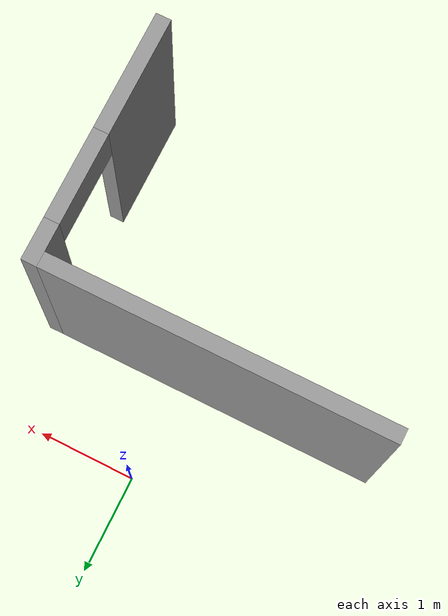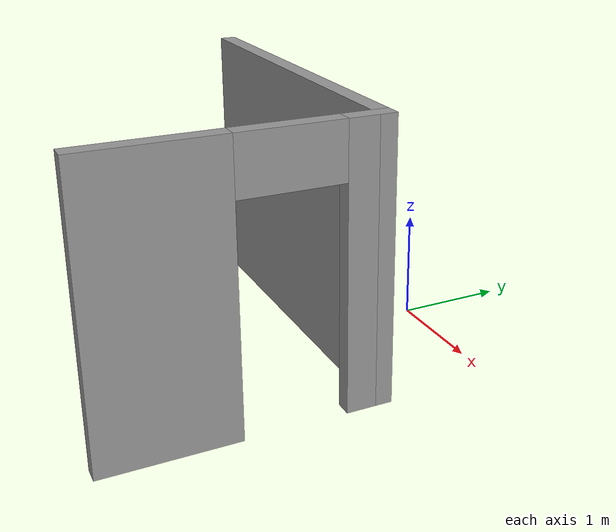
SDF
<?xml version='1.0'?>
<sdf version='1.6'>
  <model name='bedroom_internal_walls'>
    <pose frame=''>-0.31671 -2.23871 0 0 -0 0</pose>
    <link name='Wall_0'>
      <pose frame=''>1.675 -0 0 0 -0 1.5708</pose>
      <visual name='Wall_0_Visual_0'>
        <pose frame=''>-0.657225 0 1.25 0 -0 0</pose>
        <geometry>
          <box>
            <size>1.18555 0.15 2.5</size>
          </box>
        </geometry>
        <material>
          <script>
            <uri>file://media/materials/scripts/gazebo.material</uri>
            <name>Gazebo/Grey</name>
          </script>
          <ambient>1 1 1 1</ambient>
        </material>
        <meta>
          <layer>0</layer>
        </meta>
      </visual>
      <collision name='Wall_0_Collision_0'>
        <geometry>
          <box>
            <size>1.18555 0.15 2.5</size>
          </box>
        </geometry>
        <pose frame=''>-0.657225 0 1.25 0 -0 0</pose>
      </collision>
      <visual name='Wall_0_Visual_1'>
        <pose frame=''>1.04278 0 1.25 0 -0 0</pose>
        <geometry>
          <box>
            <size>0.41445 0.15 2.5</size>
          </box>
        </geometry>
        <material>
          <script>
            <uri>file://media/materials/scripts/gazebo.material</uri>
            <name>Gazebo/Grey</name>
          </script>
          <ambient>1 1 1 1</ambient>
        </material>
        <meta>
          <layer>0</layer>
        </meta>
      </visual>
      <collision name='Wall_0_Collision_1'>
        <geometry>
          <box>
            <size>0.41445 0.15 2.5</size>
          </box>
        </geometry>
        <pose frame=''>1.04278 0 1.25 0 -0 0</pose>
      </collision>
      <visual name='Wall_0_Visual_2'>
        <pose frame=''>0.38555 0 2.25 0 -0 0</pose>
        <geometry>
          <box>
            <size>0.9 0.15 0.5</size>
          </box>
        </geometry>
        <material>
          <script>
            <uri>file://media/materials/scripts/gazebo.material</uri>
            <name>Gazebo/Grey</name>
          </script>
          <ambient>1 1 1 1</ambient>
        </material>
        <meta>
          <layer>0</layer>
        </meta>
      </visual>
      <collision name='Wall_0_Collision_2'>
        <geometry>
          <box>
            <size>0.9 0.15 0.5</size>
          </box>
        </geometry>
        <pose frame=''>0.38555 0 2.25 0 -0 0</pose>
      </collision>
    </link>
    <link name='Wall_3'>
      <collision name='Wall_3_Collision'>
        <geometry>
          <box>
            <size>3.5 0.15 2.5</size>
          </box>
        </geometry>
        <pose frame=''>0 0 1.25 0 -0 0</pose>
      </collision>
      <visual name='Wall_3_Visual'>
        <pose frame=''>0 0 1.25 0 -0 0</pose>
        <geometry>
          <box>
            <size>3.5 0.15 2.5</size>
          </box>
        </geometry>
        <material>
          <script>
            <uri>file://media/materials/scripts/gazebo.material</uri>
            <name>Gazebo/Grey</name>
          </script>
          <ambient>1 1 1 1</ambient>
        </material>
        <meta>
          <layer>0</layer>
        </meta>
      </visual>
      <pose frame=''>-0 1.175 0 0 -0 3.14159</pose>
    </link>
    <static>1</static>
  </model>
</sdf>
